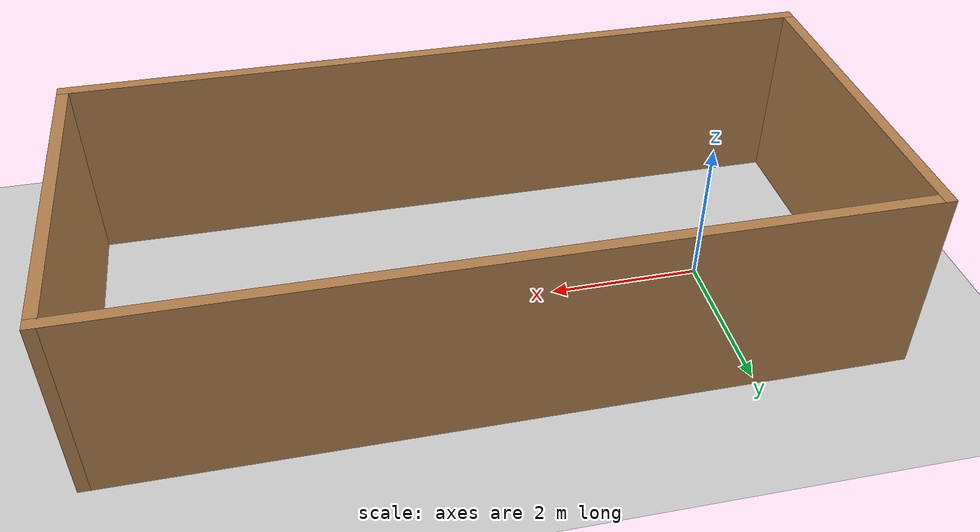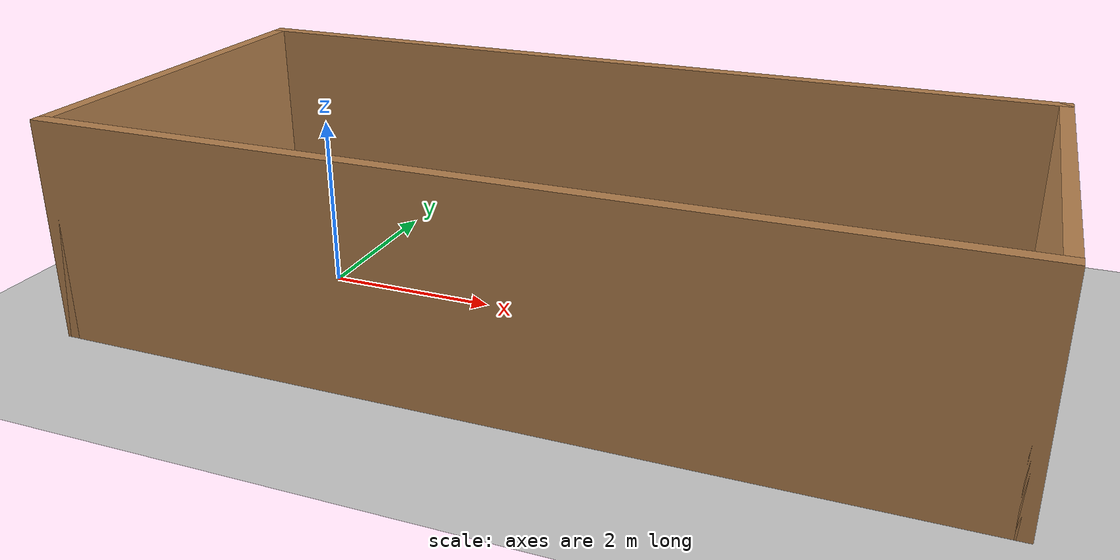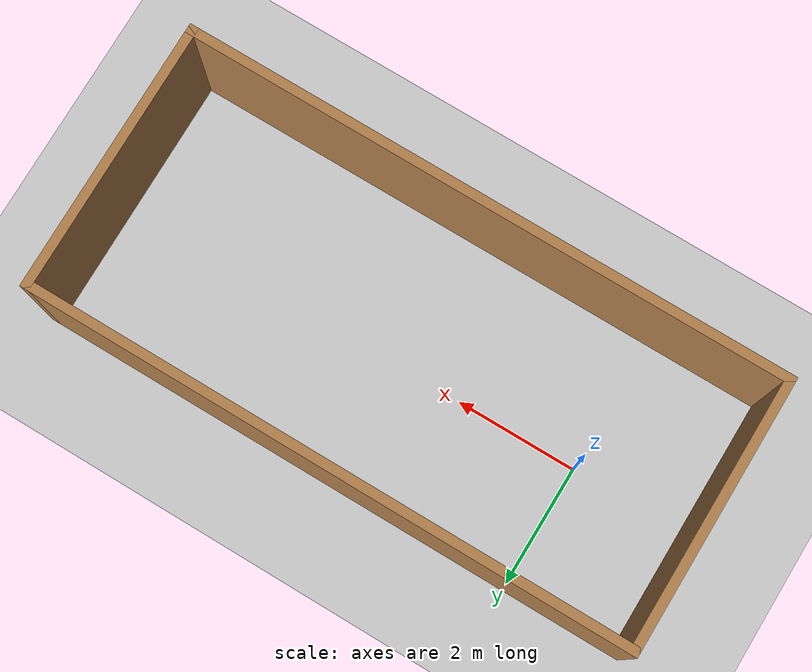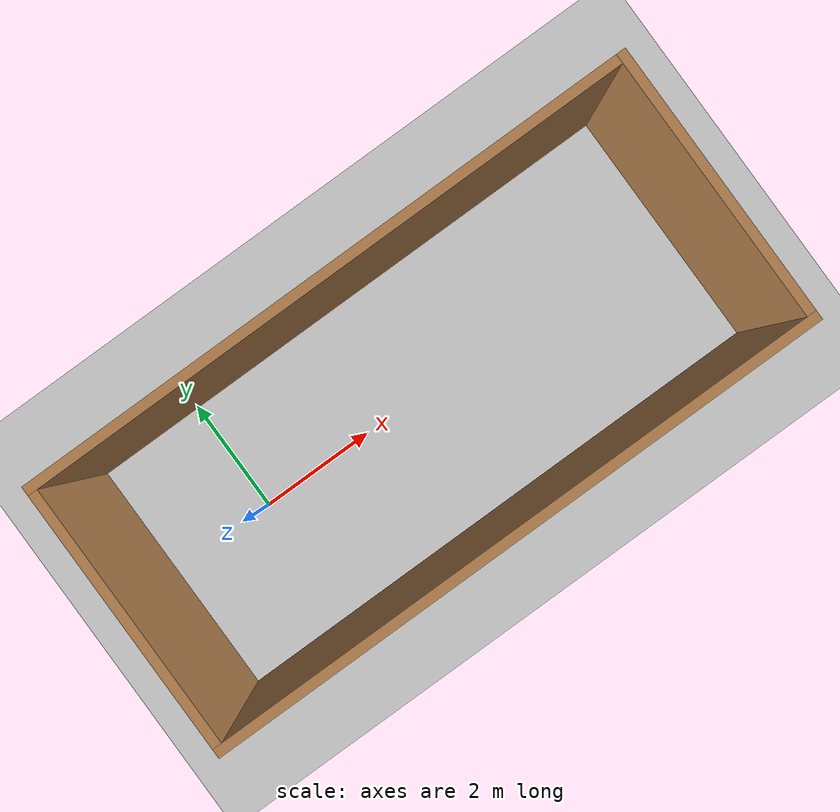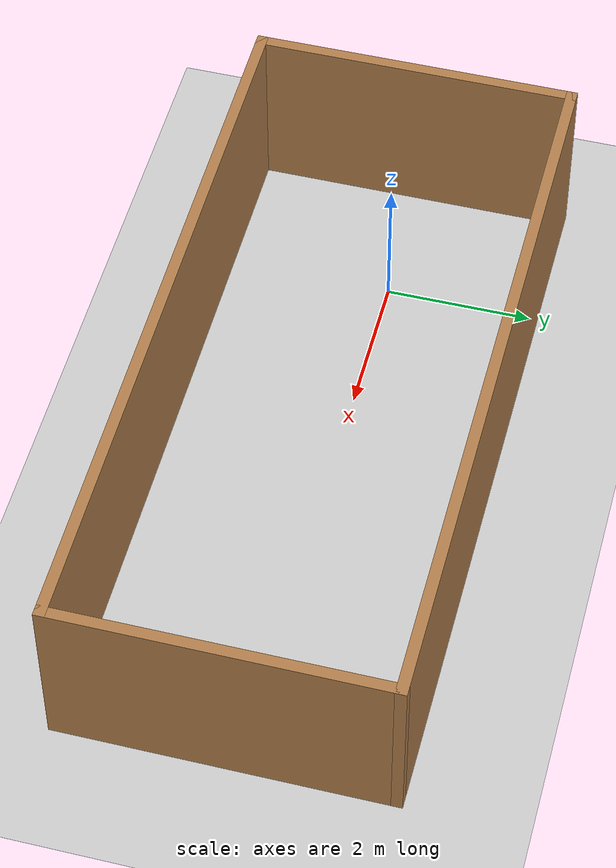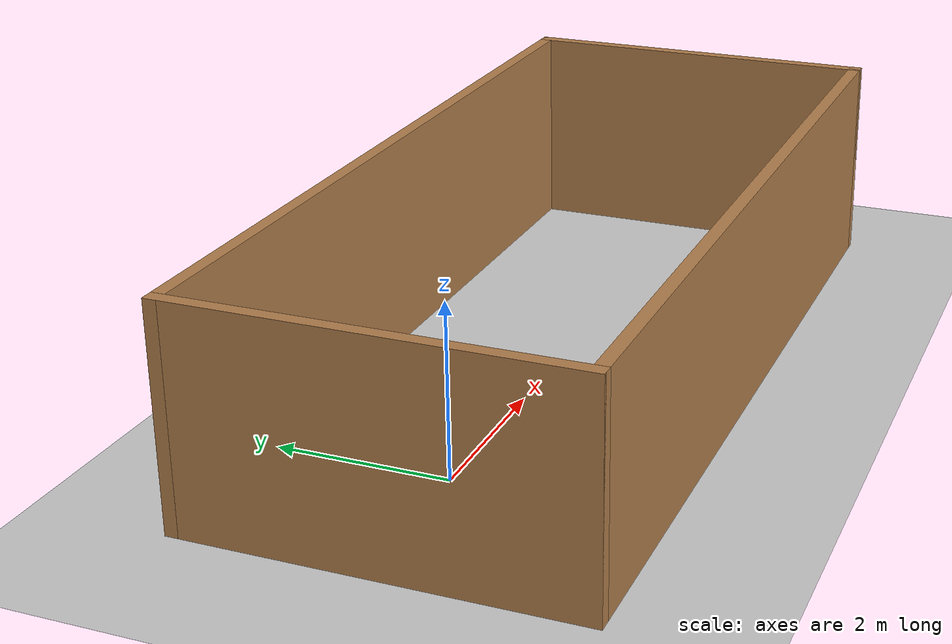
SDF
<sdf version="1.6">
 <world name="default">
  <include><uri>model://ground_plane</uri></include>
  <include><uri>model://sun</uri></include>
  <magnetic_field>6e-06 2.3e-05 -4.2e-05</magnetic_field>
  <atmosphere type="adiabatic"/>
  <plugin name="ros_interface_plugin" filename="librotors_gazebo_ros_interface_plugin.so"/>
  <spherical_coordinates>
   <surface_model>EARTH_WGS84</surface_model>
   <latitude_deg>47.3667</latitude_deg>
   <longitude_deg>8.5500</longitude_deg>
   <elevation>500.0</elevation>
   <heading_deg>0</heading_deg>
  </spherical_coordinates>
  <physics type="ode">
   <ode>
    <solver><type>quick</type><iters>1000</iters><sor>1.3</sor></solver>
    <constraints>
     <cfm>0</cfm>
     <erp>0.2</erp>
     <contact_max_correcting_vel>100</contact_max_correcting_vel>
     <contact_surface_layer>0.001</contact_surface_layer>
    </constraints>
   </ode>
   <max_step_size>0.01</max_step_size>
   <real_time_factor>1</real_time_factor>
   <real_time_update_rate>100</real_time_update_rate>
   <gravity>0 0 -9.8</gravity>
  </physics>
  <scene><ambient>0.4 0.4 0.4 1</ambient><background>0.7 0.7 0.7 1</background><shadows>1</shadows></scene>
  <model name="home1">
   <pose>3.00825 -0.134533 0 0 -0 0</pose>
   <link name="Wall_35">
    <visual name="Wall_35_Visual">
     <pose>0 0 1.25 0 -0 0</pose>
     <geometry><box><size>10 0.15 2.5</size></box></geometry>
     <material>
      <script><uri>file://media/materials/scripts/gazebo.material</uri><name>Gazebo/Wood</name></script>
      <ambient>1 1 1 1</ambient>
     </material>
    </visual>
    <pose>0 -2.175 0 0 -0 0</pose>
   </link>
   <link name="Wall_36">
    <visual name="Wall_36_Visual">
     <pose>0 0 1.25 0 -0 0</pose>
     <geometry><box><size>4.5 0.15 2.5</size></box></geometry>
     <material>
      <script><uri>file://media/materials/scripts/gazebo.material</uri><name>Gazebo/Wood</name></script>
      <ambient>1 1 1 1</ambient>
     </material>
    </visual>
    <pose>4.925 0 0 0 -0 1.5708</pose>
   </link>
   <link name="Wall_37">
    <visual name="Wall_37_Visual">
     <pose>0 0 1.25 0 -0 0</pose>
     <geometry><box><size>10 0.15 2.5</size></box></geometry>
     <material>
      <script><uri>file://media/materials/scripts/gazebo.material</uri><name>Gazebo/Wood</name></script>
      <ambient>1 1 1 1</ambient>
     </material>
    </visual>
    <pose>0 2.175 0 0 -0 3.14159</pose>
   </link>
   <link name="Wall_38">
    <visual name="Wall_38_Visual">
     <pose>0 0 1.25 0 -0 0</pose>
     <geometry><box><size>4.5 0.15 2.5</size></box></geometry>
     <material>
      <script><uri>file://media/materials/scripts/gazebo.material</uri><name>Gazebo/Wood</name></script>
      <ambient>1 1 1 1</ambient>
     </material>
    </visual>
    <pose>-4.925 0 0 0 0 -1.5708</pose>
   </link>
   <static>1</static>
  </model>
 </world>
</sdf>
